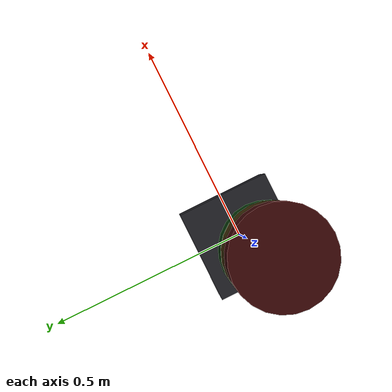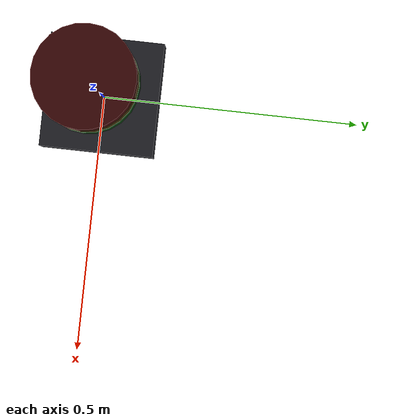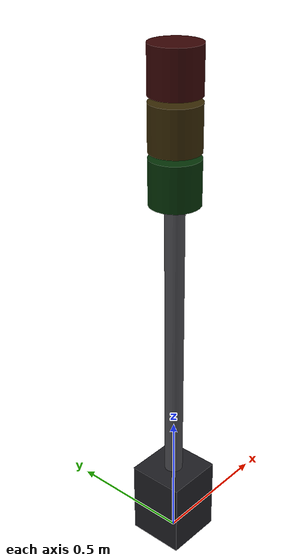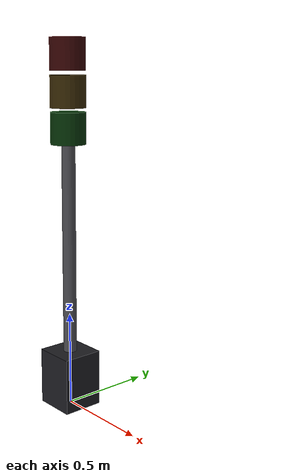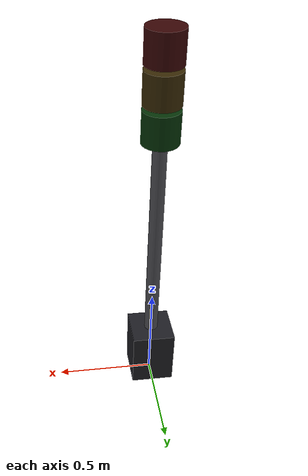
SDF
<?xml version="1.0"?>

<sdf version="1.10">

  <model name="stack_light">

    <static>true</static>

    <link name="stack_light_link">

      <collision name="base_collision">
        <pose>0 0 0.15 0 0 0</pose>

        <geometry>
          <box>
            <size>0.22 0.22 0.30</size>
          </box>
        </geometry>
      </collision>

      <visual name="base_visual">
        <pose>0 0 0.15 0 0 0</pose>

        <geometry>
          <box>
            <size>0.22 0.22 0.30</size>
          </box>
        </geometry>

        <material>
          <ambient>0.06 0.06 0.07 1</ambient>
          <diffuse>0.12 0.12 0.14 1</diffuse>
        </material>
      </visual>

      <collision name="pole_collision">
        <pose>0 0 0.85 0 0 0</pose>

        <geometry>
          <cylinder>
            <radius>0.035</radius>
            <length>1.15</length>
          </cylinder>
        </geometry>
      </collision>

      <visual name="pole_visual">
        <pose>0 0 0.85 0 0 0</pose>

        <geometry>
          <cylinder>
            <radius>0.035</radius>
            <length>1.15</length>
          </cylinder>
        </geometry>

        <material>
          <ambient>0.20 0.20 0.22 1</ambient>
          <diffuse>0.30 0.30 0.32 1</diffuse>
        </material>
      </visual>

      <visual name="green_light_visual">
        <pose>0 0 1.48 0 0 0</pose>

        <geometry>
          <cylinder>
            <radius>0.09</radius>
            <length>0.16</length>
          </cylinder>
        </geometry>

        <material>
          <ambient>0.01 0.12 0.02 1</ambient>
          <diffuse>0.02 0.20 0.03 1</diffuse>
          <emissive>0 0 0 1</emissive>
        </material>
      </visual>

      <visual name="yellow_light_visual">
        <pose>0 0 1.66 0 0 0</pose>

        <geometry>
          <cylinder>
            <radius>0.09</radius>
            <length>0.16</length>
          </cylinder>
        </geometry>

        <material>
          <ambient>0.14 0.10 0.01 1</ambient>
          <diffuse>0.22 0.16 0.02 1</diffuse>
          <emissive>0 0 0 1</emissive>
        </material>
      </visual>

      <visual name="red_light_visual">
        <pose>0 0 1.84 0 0 0</pose>

        <geometry>
          <cylinder>
            <radius>0.09</radius>
            <length>0.16</length>
          </cylinder>
        </geometry>

        <material>
          <ambient>0.14 0.01 0.01 1</ambient>
          <diffuse>0.22 0.02 0.02 1</diffuse>
          <emissive>0 0 0 1</emissive>
        </material>
      </visual>

    </link>

  </model>

</sdf>
